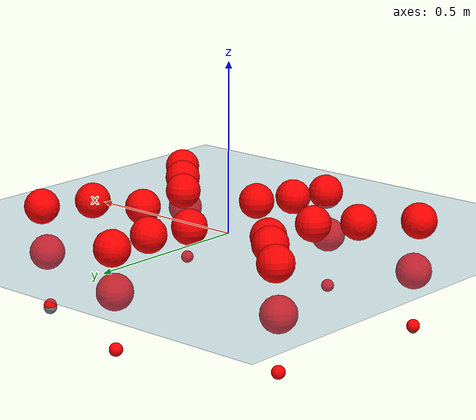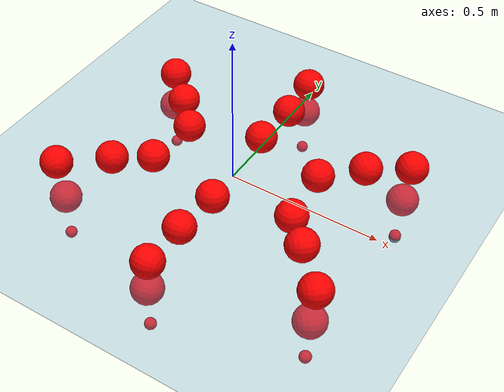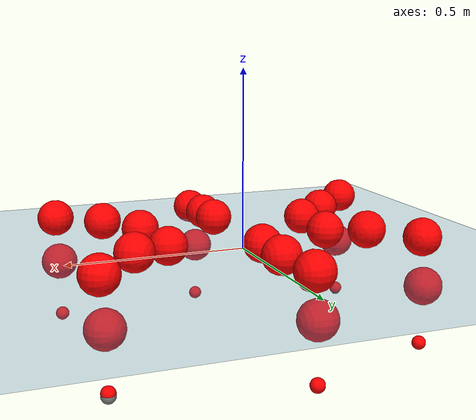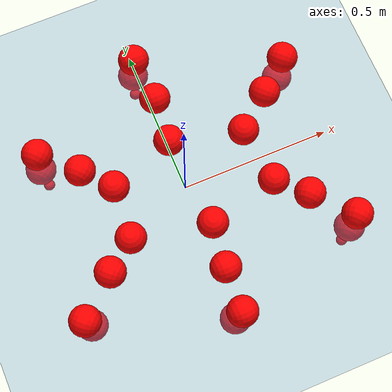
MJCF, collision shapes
<mujoco model="Golem">
  <compiler angle="radian" assetdir="assets" balanceinertia="true" inertiafromgeom="false"/>

  <option timestep="0.005" density="1.2" viscosity="2e-05"/>

  <size nkey="1"/>

  <visual>
    <quality shadowsize="8192"/>
    <map shadowclip="0.5"/>
  </visual>

  <default>
    <default class="/">
      <joint armature="0.01" damping="0.01" frictionloss="0.01"/>
      <geom contype="0" conaffinity="0" group="1" solref="-1000 -80"/>
      <site size="0.01 0.005 0.005" group="5"/>
      <general forcelimited="true" biastype="affine" gainprm="25" biasprm="0 -25 -0.5"/>
      <default class="visual">
        <geom type="mesh" group="2"/>
      </default>
      <default class="collision">
        <geom group="3"/>
      </default>
      <default class="foot">
        <geom size="0.01 0 0" condim="6" group="4" priority="1" solimp="0.015 1 0.01"/>
      </default>
      <default class="reward_collision_sphere">
        <geom group="5" rgba="1 0 0 1"/>
      </default>
    </default>
  </default>

  <asset>
    <texture type="skybox" colorspace="auto" name="//unnamed_texture_0" builtin="gradient" rgb1="0.95 0.95 0.95" rgb2="0.95 0.95 0.95" width="100" height="600"/>
    <texture type="2d" colorspace="auto" name="texplane" builtin="checker" rgb1="0.345 0.575 0.748" rgb2="0.345 0.575 0.748" markrgb="1 1 1" width="512" height="512"/>
    <material name="MatPlane" class="/" texture="texplane" texuniform="true" texrepeat="2 2" specular="0.9"/>
    <mesh name="body" class="/" file="body.stl" scale="0.001 0.001 0.001"/>
    <mesh name="coxa" class="/" file="coxa.stl" scale="0.001 0.001 0.001"/>
    <mesh name="femur" class="/" file="femur.stl" scale="0.001 0.001 0.001"/>
    <mesh name="tibia" class="/" file="tibia.stl" scale="0.001 0.001 0.001"/>
    <mesh name="tarsus" class="/" file="tarsus.stl" scale="0.001 0.001 0.001"/>
  </asset>

  <worldbody>
    <geom name="floor" class="/" size="100 100 0.125" type="plane" group="0" material="MatPlane"/>
    <light name="toplight_shadow" class="/" pos="0 0 5" dir="0.0990148 0.0990148 -0.990148" type="directional" ambient="0.04 0.04 0.04" diffuse="0.55 0.55 0.55" specular="0.12 0.12 0.12"/>
    <light name="toplight_fill" class="/" pos="0 0 5" dir="0.0990148 0.0990148 -0.990148" type="directional" castshadow="false" ambient="0.04 0.04 0.04" diffuse="0.3 0.3 0.3" specular="0.08 0.08 0.08"/>
    <body name="trunk" pos="0.0131871 -0.00128241 -0.00307101" quat="0.999966 -0.0081169 0.000230537 0.0017245">
      <inertial pos="0.00590051 -0.0177731 -0.0164404" quat="0.998496 -0.0198107 0.0144391 -0.0490331" mass="8.51497" diaginertia="0.0893443 0.050336 0.00825781"/>
      <joint name="//unnamed_joint_0" type="free"/>
      <geom name="//unnamed_geom_1" class="/" pos="0 0 0.0604861" quat="1 0 0 0" type="mesh" rgba="0.9 0.9 0.9 1" mesh="body"/>
      <site name="imu" class="/" pos="0.206802 -0.0732602 0.146136" size="0.0129255"/>
      <camera name="track" class="/" pos="0 -2.82552 0" quat="0.707107 0.707107 0 0" mode="trackcom"/>
      <camera name="ego_camera" class="/" pos="0.197574 0 0.0945095" quat="-0.5 -0.5 0.5 0.5"/>
      <body name="coxa_RR" pos="-0.273802 -0.132158 0.0535752" quat="0.384406 -0.00605395 0.00418597 -0.923135">
        <inertial pos="-0.0120411 -0.00945736 -0.00987598" quat="0.995952 0.0726159 0.02064 0.0487907" mass="0.271621" diaginertia="0.0652676 0.0403939 0.00662577"/>
        <joint name="coxa_joint_RR" class="/" pos="0 0 0" axis="-0.00359541 0.00564936 -0.999978" range="-3.15044 3.49636" armature="0.00160226" damping="0" frictionloss="0.0133694"/>
        <geom name="//unnamed_geom_2" class="/" type="mesh" rgba="0.2 0.2 0.2 1" mesh="coxa"/>
        <geom name="//unnamed_geom_3" class="reward_collision_sphere" size="0.0517021" pos="-0.045594 0 0"/>
        <body name="femur_RR" pos="0.0807406 -0.0155079 0.00365188" quat="0.495073 -0.501916 0.500538 0.502438">
          <inertial pos="-0.0160409 -0.00931482 0.00205985" quat="0.996965 -0.0661034 0.0405114 -0.00700616" mass="0.45033" diaginertia="0.0832498 0.0580484 0.00732525"/>
          <joint name="femur_joint_RR" class="/" pos="0 0 0" axis="0.00638249 -0.00321404 -0.999974" range="-3.36479 3.37491" armature="0.012422" damping="0.0850043" frictionloss="0.00693857"/>
          <geom name="//unnamed_geom_4" class="/" type="mesh" rgba="0.9 0.9 0.9 1" mesh="femur"/>
          <geom name="//unnamed_geom_5" class="reward_collision_sphere" size="0.0517021"/>
          <body name="tibia_RR" pos="-0.0015678 -0.16955 -0.0117669" quat="0.00371539 0.999986 0.00161441 0.00351619">
            <inertial pos="0.0134455 -0.00402815 -0.00335747" quat="0.998892 -0.0327157 0.0323243 -0.0100183" mass="0.327925" diaginertia="0.0703222 0.0576074 0.00611578"/>
            <joint name="tibia_joint_RR" class="/" pos="0 0 0" axis="0.0361394 0.0625703 0.997386" range="-2.96004 3.18115" armature="0.0134414" damping="0.0139641" frictionloss="0.0116054"/>
            <geom name="//unnamed_geom_6" class="/" type="mesh" rgba="0.2 0.2 0.2 1" mesh="tibia"/>
            <geom name="//unnamed_geom_7" class="reward_collision_sphere" size="0.0517021"/>
            <body name="tarsus_RR" pos="0.148094 -0.0126564 -0.00307037" quat="0.999983 5.4413e-05 -0.00569721 0.000913559">
              <inertial pos="0.0903475 0.00523642 0.0094178" quat="0.500957 0.500933 0.503495 0.494572" mass="0.343483" diaginertia="0.0692773 0.0468107 0.00579219"/>
              <joint name="tarsus_joint_RR" class="/" pos="0 0 0" axis="0.0204086 0.0199675 0.999592" range="-3.1436 3.1282" armature="0.0101281" damping="0.00710457" frictionloss="0.0220098"/>
              <geom name="//unnamed_geom_8" class="/" type="mesh" rgba="0.9 0.9 0.9 1" mesh="tarsus"/>
              <geom name="foot_1" class="foot" size="0.0151902" pos="0.170218 0 0" quat="0 -0.707107 0 0.707107"/>
              <geom name="//unnamed_geom_10" class="reward_collision_sphere" size="0.0517021"/>
              <geom name="//unnamed_geom_11" class="reward_collision_sphere" size="0.0193883" pos="0.163379 0 0"/>
              <site name="foot_1" class="foot" pos="0.170218 0 0" quat="0 -0.707107 0 0.707107" size="0.0129255"/>
            </body>
          </body>
        </body>
      </body>
      <body name="coxa_RM" pos="0.0160334 -0.201858 0.0588781" quat="0.705441 0.00230829 0.00249136 -0.70876">
        <inertial pos="0.0156405 -0.00298239 0.00627373" quat="0.999946 -0.00295117 -0.00739142 -0.00669254" mass="0.342753" diaginertia="0.0728712 0.0392269 0.00584666"/>
        <joint name="coxa_joint_RM" class="/" pos="0 0 0" axis="-0.00158963 -0.00215993 -0.999996" range="-3.4178 3.15577" armature="0.00386585" damping="0.00361079" frictionloss="0.0141633"/>
        <geom name="//unnamed_geom_12" class="/" type="mesh" rgba="0.2 0.2 0.2 1" mesh="coxa"/>
        <geom name="//unnamed_geom_13" class="reward_collision_sphere" size="0.0517021" pos="-0.045594 0 0"/>
        <body name="femur_RM" pos="0.0996068 -0.0172383 -0.0152859" quat="0.497355 -0.502959 0.497129 0.502528">
          <inertial pos="-0.00434249 0.0109625 -0.00877767" quat="0.996286 0.0391358 -0.0744841 0.0183067" mass="0.463624" diaginertia="0.111609 0.0665122 0.009988"/>
          <joint name="femur_joint_RM" class="/" pos="0 0 0" axis="0.00244603 0.00443612 -0.999987" range="-2.78874 3.2834" armature="0.011253" damping="0" frictionloss="0.0132265"/>
          <geom name="//unnamed_geom_14" class="/" type="mesh" rgba="0.9 0.9 0.9 1" mesh="femur"/>
          <geom name="//unnamed_geom_15" class="reward_collision_sphere" size="0.0517021"/>
          <body name="tibia_RM" pos="0.015196 -0.146924 -0.00756335" quat="0.00659975 0.999961 -0.00289108 -0.00518536">
            <inertial pos="0.0128394 -0.000262345 0.00701907" quat="0.997682 0.00819138 0.0193066 -0.0647421" mass="0.425613" diaginertia="0.0879225 0.0707332 0.00967756"/>
            <joint name="tibia_joint_RM" class="/" pos="0 0 0" axis="-0.00733998 -0.0367781 0.999296" stiffness="0.0794652" range="-3.13164 3.13262" armature="0.0161047" damping="0.0670023" frictionloss="0.017471"/>
            <geom name="//unnamed_geom_16" class="/" type="mesh" rgba="0.2 0.2 0.2 1" mesh="tibia"/>
            <geom name="//unnamed_geom_17" class="reward_collision_sphere" size="0.0517021"/>
            <body name="tarsus_RM" pos="0.130582 -0.00804509 0.0137" quat="0.999969 -0.000690542 0.0077826 0.000687773">
              <inertial pos="0.0911397 -0.00536084 0.000469442" quat="0.522609 0.499866 0.466408 0.509389" mass="0.434716" diaginertia="0.07863 0.0567124 0.00572764"/>
              <joint name="tarsus_joint_RM" class="/" pos="0 0 0" axis="0.0516067 -0.0536751 0.997224" range="-2.88413 2.78498" armature="0.0206547" damping="0.00744998" frictionloss="0.0243576"/>
              <geom name="//unnamed_geom_18" class="/" type="mesh" rgba="0.9 0.9 0.9 1" mesh="tarsus"/>
              <geom name="foot_2" class="foot" size="0.00926487" pos="0.170218 0 0" quat="0 -0.707107 0 0.707107"/>
              <geom name="//unnamed_geom_20" class="reward_collision_sphere" size="0.0517021"/>
              <geom name="//unnamed_geom_21" class="reward_collision_sphere" size="0.0193883" pos="0.163379 0 0"/>
              <site name="foot_2" class="foot" pos="0.170218 0 0" quat="0 -0.707107 0 0.707107" size="0.0129255"/>
            </body>
          </body>
        </body>
      </body>
      <body name="coxa_RF" pos="0.286216 -0.131714 0.0594817" quat="0.921417 0.00447506 0.000235122 -0.388551">
        <inertial pos="-0.0159838 -0.0162822 -0.000709123" quat="0.999923 -0.00411983 0.01111 -0.0035893" mass="0.399783" diaginertia="0.0869892 0.0641364 0.00729552"/>
        <joint name="coxa_joint_RF" class="/" pos="0 0 0" axis="-0.00751575 -0.0468806 -0.998872" stiffness="0.0877478" range="-3.3401 3.46603" armature="0.0190102" damping="0" frictionloss="0.00991207"/>
        <geom name="//unnamed_geom_22" class="/" type="mesh" rgba="0.2 0.2 0.2 1" mesh="coxa"/>
        <geom name="//unnamed_geom_23" class="reward_collision_sphere" size="0.0517021" pos="-0.045594 0 0"/>
        <body name="femur_RF" pos="0.0789213 -0.00184211 0.00765316" quat="0.4935 -0.50094 0.502833 0.502669">
          <inertial pos="0.000708758 0.011328 -0.017197" quat="0.99724 -0.0402748 -0.0204451 0.0589326" mass="0.444707" diaginertia="0.0985153 0.0687938 0.0110065"/>
          <joint name="femur_joint_RF" class="/" pos="0 0 0" axis="0.0851754 0.01982 -0.996169" range="-3.05699 3.36221" armature="0.000636259" damping="0" frictionloss="0.00411951"/>
          <geom name="//unnamed_geom_24" class="/" type="mesh" rgba="0.9 0.9 0.9 1" mesh="femur"/>
          <geom name="//unnamed_geom_25" class="reward_collision_sphere" size="0.0517021"/>
          <body name="tibia_RF" pos="0.00653718 -0.162961 -0.00471432" quat="-0.00257688 0.999986 -0.00302404 -0.00357813">
            <inertial pos="0.000311301 0.000877394 0.00193797" quat="0.997573 0.0510573 0.0294001 0.0371178" mass="0.544665" diaginertia="0.0888573 0.0644656 0.00686346"/>
            <joint name="tibia_joint_RF" class="/" pos="0 0 0" axis="0.0262467 -0.0146627 0.999548" stiffness="0.0573646" range="-3.14931 2.81292" armature="0.00961619" damping="0.0122304" frictionloss="0.00752443"/>
            <geom name="//unnamed_geom_26" class="/" type="mesh" rgba="0.2 0.2 0.2 1" mesh="tibia"/>
            <geom name="//unnamed_geom_27" class="reward_collision_sphere" size="0.0517021"/>
            <body name="tarsus_RF" pos="0.132342 -0.00255975 0.00529099" quat="0.999962 0.00141108 -0.0081935 0.00252516">
              <inertial pos="0.0988726 -0.000457317 0.000556712" quat="0.513853 0.524951 0.447282 0.510215" mass="0.494687" diaginertia="0.0915976 0.0671972 0.0103147"/>
              <joint name="tarsus_joint_RF" class="/" pos="0 0 0" axis="-0.0307762 -0.023876 0.999241" range="-3.14689 3.20408" armature="0.0138048" damping="0" frictionloss="0.0053399"/>
              <geom name="//unnamed_geom_28" class="/" type="mesh" rgba="0.9 0.9 0.9 1" mesh="tarsus"/>
              <geom name="foot_3" class="foot" size="0.00552585" pos="0.170218 0 0" quat="0 -0.707107 0 0.707107"/>
              <geom name="//unnamed_geom_30" class="reward_collision_sphere" size="0.0517021"/>
              <geom name="//unnamed_geom_31" class="reward_collision_sphere" size="0.0193883" pos="0.163379 0 0"/>
              <site name="foot_3" class="foot" pos="0.170218 0 0" quat="0 -0.707107 0 0.707107" size="0.0129255"/>
            </body>
          </body>
        </body>
      </body>
      <body name="coxa_LR" pos="-0.260683 0.111958 0.0561372" quat="0.38761 -0.00542398 -0.000496566 0.921808">
        <inertial pos="-0.000606609 0.00262199 -0.00807971" quat="0.999941 -0.00723064 0.00537127 0.0060797" mass="0.471586" diaginertia="0.0934455 0.0512908 0.00892822"/>
        <joint name="coxa_joint_LR" class="/" pos="0 0 0" axis="0.0516239 -0.055198 -0.99714" stiffness="0.0462128" range="-3.4293 3.15075" armature="0.0189226" damping="0" frictionloss="0.0117583"/>
        <geom name="//unnamed_geom_32" class="/" type="mesh" rgba="0.2 0.2 0.2 1" mesh="coxa"/>
        <geom name="//unnamed_geom_33" class="reward_collision_sphere" size="0.0517021" pos="-0.045594 0 0"/>
        <body name="femur_LR" pos="0.0742523 -0.00333663 0.0158771" quat="0.496203 -0.50189 0.501281 0.500607">
          <inertial pos="0.00022215 0.00490365 -0.010359" quat="0.998926 -0.031214 0.0322854 0.0114276" mass="0.386866" diaginertia="0.0706854 0.0641874 0.00645811"/>
          <joint name="femur_joint_LR" class="/" pos="0 0 0" axis="0.0198864 -0.0190758 0.99962" stiffness="0.0630688" range="-2.8258 2.82973" armature="0.0126892" damping="0.0880478" frictionloss="0.0179007"/>
          <geom name="//unnamed_geom_34" class="/" type="mesh" rgba="0.9 0.9 0.9 1" mesh="femur"/>
          <geom name="//unnamed_geom_35" class="reward_collision_sphere" size="0.0517021"/>
          <body name="tibia_LR" pos="0.00208652 -0.152185 0.0022769" quat="0.00242989 0.999993 0.00217581 0.00177202">
            <inertial pos="0.017616 0.00786233 0.016215" quat="0.999675 0.00246053 0.0251457 0.0035342" mass="0.429344" diaginertia="0.0842704 0.0485794 0.0092536"/>
            <joint name="tibia_joint_LR" class="/" pos="0 0 0" axis="0.000673829 0.00243716 -0.999997" stiffness="0.0584354" range="-3.46312 2.86244" armature="0.0201781" damping="0" frictionloss="0.018514"/>
            <geom name="//unnamed_geom_36" class="/" type="mesh" rgba="0.2 0.2 0.2 1" mesh="tibia"/>
            <geom name="//unnamed_geom_37" class="reward_collision_sphere" size="0.0517021"/>
            <body name="tarsus_LR" pos="0.137997 0.0101823 -0.00762249" quat="1 -0.000181946 3.65248e-05 0.000675709">
              <inertial pos="0.085439 -0.000310279 -0.00754783" quat="0.506909 0.48806 0.498571 0.506229" mass="0.391307" diaginertia="0.0744084 0.0382936 0.00602391"/>
              <joint name="tarsus_joint_LR" class="/" pos="0 0 0" axis="0.0799055 0.0187984 -0.996625" range="-3.03423 3.41438" armature="0.0170499" damping="0.0440828" frictionloss="0.00407938"/>
              <geom name="//unnamed_geom_38" class="/" type="mesh" rgba="0.9 0.9 0.9 1" mesh="tarsus"/>
              <geom name="foot_4" class="foot" size="0.00912061" pos="0.170218 0 0" quat="0.707107 0 -0.707107 0"/>
              <geom name="//unnamed_geom_40" class="reward_collision_sphere" size="0.0517021"/>
              <geom name="//unnamed_geom_41" class="reward_collision_sphere" size="0.0193883" pos="0.163379 0 0"/>
              <site name="foot_4" class="foot" pos="0.170218 0 0" quat="0.707107 0 -0.707107 0" size="0.0129255"/>
            </body>
          </body>
        </body>
      </body>
      <body name="coxa_LM" pos="-0.00533932 0.201869 0.0586345" quat="0.706748 0.00478339 -0.000973536 0.707448">
        <inertial pos="-0.0161342 -0.0173349 -0.00813254" quat="0.999999 0.000117754 -7.7e-05 -0.00133271" mass="0.431912" diaginertia="0.0735556 0.0566862 0.00758403"/>
        <joint name="coxa_joint_LM" class="/" pos="0 0 0" axis="0.0288915 -0.0142024 -0.999482" stiffness="0.0682585" range="-3.37506 3.37583" armature="0.00277364" damping="0.0175882" frictionloss="0.00548147"/>
        <geom name="//unnamed_geom_42" class="/" type="mesh" rgba="0.2 0.2 0.2 1" mesh="coxa"/>
        <geom name="//unnamed_geom_43" class="reward_collision_sphere" size="0.0517021" pos="-0.045594 0 0"/>
        <body name="femur_LM" pos="0.105959 -0.0124461 0.00933169" quat="0.505267 -0.502539 0.494187 0.497935">
          <inertial pos="0.0124531 -0.0114546 0.00559069" quat="0.997612 -0.0680525 -0.00769083 -0.00898007" mass="0.392033" diaginertia="0.0611473 0.0593085 0.00627796"/>
          <joint name="femur_joint_LM" class="/" pos="0 0 0" axis="-0.00551818 -0.0383406 0.999249" range="-3.32246 3.13343" armature="0.0238468" damping="0.0182771" frictionloss="0.0106024"/>
          <geom name="//unnamed_geom_44" class="/" type="mesh" rgba="0.9 0.9 0.9 1" mesh="femur"/>
          <geom name="//unnamed_geom_45" class="reward_collision_sphere" size="0.0517021"/>
          <body name="tibia_LM" pos="0.000884242 -0.155589 0.0132447" quat="-0.00143346 0.999999 -0.000762706 -0.000431431">
            <inertial pos="-0.00802856 -0.0153789 -0.0103033" quat="0.999119 0.0262733 0.0256797 -0.0202868" mass="0.449284" diaginertia="0.0942443 0.0526812 0.00681878"/>
            <joint name="tibia_joint_LM" class="/" pos="0 0 0" axis="-0.0397574 0.0438325 -0.998247" stiffness="0.03692" range="-2.9689 2.87409" armature="0.0123277" damping="0.0390298" frictionloss="0.0205363"/>
            <geom name="//unnamed_geom_46" class="/" type="mesh" rgba="0.2 0.2 0.2 1" mesh="tibia"/>
            <geom name="//unnamed_geom_47" class="reward_collision_sphere" size="0.0517021"/>
            <body name="tarsus_LM" pos="0.120569 0.000128292 -0.00802061" quat="1 -0.000326136 0.000113368 0.000265039">
              <inertial pos="0.0968019 -0.00022229 8.08416e-05" quat="0.508155 0.501554 0.531281 0.45603" mass="0.272669" diaginertia="0.0571001 0.0429565 0.00723613"/>
              <joint name="tarsus_joint_LM" class="/" pos="0 0 0" axis="0.0483711 0.000788512 -0.998829" range="-3.12891 3.39335" armature="0.0136765" damping="0" frictionloss="0.013298"/>
              <geom name="//unnamed_geom_48" class="/" type="mesh" rgba="0.9 0.9 0.9 1" mesh="tarsus"/>
              <geom name="foot_5" class="foot" size="0.00892727" pos="0.170218 0 0" quat="0.707107 0 -0.707107 0"/>
              <geom name="//unnamed_geom_50" class="reward_collision_sphere" size="0.0517021"/>
              <geom name="//unnamed_geom_51" class="reward_collision_sphere" size="0.0193883" pos="0.163379 0 0"/>
              <site name="foot_5" class="foot" pos="0.170218 0 0" quat="0.707107 0 -0.707107 0" size="0.0129255"/>
            </body>
          </body>
        </body>
      </body>
      <body name="coxa_LF" pos="0.265863 0.127247 0.0583756" quat="0.92387 0.000513815 -0.000173246 0.382706">
        <inertial pos="6.63287e-05 -0.00703134 0.000856857" quat="0.999995 -0.00267076 0.00141277 -0.000214395" mass="0.547942" diaginertia="0.100994 0.0604184 0.00803837"/>
        <joint name="coxa_joint_LF" class="/" pos="0 0 0" axis="-0.0738901 -0.0364005 -0.996602" range="-3.21622 3.33799" armature="0.00711028" damping="0.0211012" frictionloss="0.0127121"/>
        <geom name="//unnamed_geom_52" class="/" type="mesh" rgba="0.2 0.2 0.2 1" mesh="coxa"/>
        <geom name="//unnamed_geom_53" class="reward_collision_sphere" size="0.0517021" pos="-0.045594 0 0"/>
        <body name="femur_LF" pos="0.098939 -0.0174614 0.0179754" quat="0.499842 -0.499846 0.497778 0.502522">
          <inertial pos="0.0149 -0.00994326 0.00731342" quat="0.999922 0.00430829 0.00396222 0.01101" mass="0.409782" diaginertia="0.0995743 0.075368 0.00825331"/>
          <joint name="femur_joint_LF" class="/" pos="0 0 0" axis="-0.0342028 0.0645475 0.997328" range="-3.13821 3.45466" armature="0.0221289" damping="0.00966506" frictionloss="0.00880664"/>
          <geom name="//unnamed_geom_54" class="/" type="mesh" rgba="0.9 0.9 0.9 1" mesh="femur"/>
          <geom name="//unnamed_geom_55" class="reward_collision_sphere" size="0.0517021"/>
          <body name="tibia_LF" pos="0.0162123 -0.147368 -0.0101286" quat="0.0029362 0.999993 0.00152257 0.00164524">
            <inertial pos="-0.00795807 -0.0102668 -0.00505218" quat="0.996841 -0.0159386 0.0656369 -0.0417848" mass="0.440391" diaginertia="0.0808329 0.0487234 0.00684944"/>
            <joint name="tibia_joint_LF" class="/" pos="0 0 0" axis="0.00187101 0.000554735 -0.999998" stiffness="0.0143977" range="-3.17991 3.35822" armature="0.024638" damping="0.0068134" frictionloss="0.0129713"/>
            <geom name="//unnamed_geom_56" class="/" type="mesh" rgba="0.2 0.2 0.2 1" mesh="tibia"/>
            <geom name="//unnamed_geom_57" class="reward_collision_sphere" size="0.0517021"/>
            <body name="tarsus_LF" pos="0.137624 -0.0103993 -0.00366906" quat="0.999961 -0.00537452 0.00333736 -0.00618303">
              <inertial pos="0.0773904 0.0154173 -0.00340238" quat="0.50558 0.493706 0.509188 0.491295" mass="0.485635" diaginertia="0.10401 0.0658009 0.00946575"/>
              <joint name="tarsus_joint_LF" class="/" pos="0 0 0" axis="-0.00612771 -0.07642 -0.997057" range="-3.43952 3.05103" armature="0.00953961" damping="0" frictionloss="0.0143694"/>
              <geom name="//unnamed_geom_58" class="/" type="mesh" rgba="0.9 0.9 0.9 1" mesh="tarsus"/>
              <geom name="foot_6" class="foot" size="0.0196654" pos="0.170218 0 0" quat="0.707107 0 -0.707107 0"/>
              <geom name="//unnamed_geom_60" class="reward_collision_sphere" size="0.0517021"/>
              <geom name="//unnamed_geom_61" class="reward_collision_sphere" size="0.0193883" pos="0.163379 0 0"/>
              <site name="foot_6" class="foot" pos="0.170218 0 0" quat="0.707107 0 -0.707107 0" size="0.0129255"/>
            </body>
          </body>
        </body>
      </body>
    </body>
  </worldbody>

  <contact>
    <pair class="/" geom1="floor" geom2="foot_1" name="//unnamed_contact_0"/>
    <pair class="/" geom1="floor" geom2="foot_2" name="//unnamed_contact_1"/>
    <pair class="/" geom1="floor" geom2="foot_3" name="//unnamed_contact_2"/>
    <pair class="/" geom1="floor" geom2="foot_4" name="//unnamed_contact_3"/>
    <pair class="/" geom1="floor" geom2="foot_5" name="//unnamed_contact_4"/>
    <pair class="/" geom1="floor" geom2="foot_6" name="//unnamed_contact_5"/>
  </contact>

  <actuator>
    <general name="coxa_joint_RR" class="/" joint="coxa_joint_RR" forcerange="-8.00282 8.00282" gainprm="22.4632" biasprm="0 -22.4632 -0.814257"/>
    <general name="femur_joint_RR" class="/" joint="femur_joint_RR" forcerange="-9.20069 9.20069" gainprm="22.4632" biasprm="0 -22.4632 -0.814257"/>
    <general name="tibia_joint_RR" class="/" joint="tibia_joint_RR" forcerange="-8.44393 8.44393" gainprm="22.4632" biasprm="0 -22.4632 -0.814257"/>
    <general name="tarsus_joint_RR" class="/" joint="tarsus_joint_RR" forcerange="-12.0012 12.0012" gainprm="22.4632" biasprm="0 -22.4632 -0.814257"/>
    <general name="coxa_joint_RM" class="/" joint="coxa_joint_RM" forcerange="-12.1706 12.1706" gainprm="22.4632" biasprm="0 -22.4632 -0.814257"/>
    <general name="femur_joint_RM" class="/" joint="femur_joint_RM" forcerange="-14.3429 14.3429" gainprm="22.4632" biasprm="0 -22.4632 -0.814257"/>
    <general name="tibia_joint_RM" class="/" joint="tibia_joint_RM" forcerange="-9.6415 9.6415" gainprm="22.4632" biasprm="0 -22.4632 -0.814257"/>
    <general name="tarsus_joint_RM" class="/" joint="tarsus_joint_RM" forcerange="-6.44005 6.44005" gainprm="22.4632" biasprm="0 -22.4632 -0.814257"/>
    <general name="coxa_joint_RF" class="/" joint="coxa_joint_RF" forcerange="-14.5479 14.5479" gainprm="22.4632" biasprm="0 -22.4632 -0.814257"/>
    <general name="femur_joint_RF" class="/" joint="femur_joint_RF" forcerange="-14.168 14.168" gainprm="22.4632" biasprm="0 -22.4632 -0.814257"/>
    <general name="tibia_joint_RF" class="/" joint="tibia_joint_RF" forcerange="-4.86032 4.86032" gainprm="22.4632" biasprm="0 -22.4632 -0.814257"/>
    <general name="tarsus_joint_RF" class="/" joint="tarsus_joint_RF" forcerange="-6.05765 6.05765" gainprm="22.4632" biasprm="0 -22.4632 -0.814257"/>
    <general name="coxa_joint_LR" class="/" joint="coxa_joint_LR" forcerange="-10.9964 10.9964" gainprm="22.4632" biasprm="0 -22.4632 -0.814257"/>
    <general name="femur_joint_LR" class="/" joint="femur_joint_LR" forcerange="-13.2692 13.2692" gainprm="22.4632" biasprm="0 -22.4632 -0.814257"/>
    <general name="tibia_joint_LR" class="/" joint="tibia_joint_LR" forcerange="-15.2417 15.2417" gainprm="22.4632" biasprm="0 -22.4632 -0.814257"/>
    <general name="tarsus_joint_LR" class="/" joint="tarsus_joint_LR" forcerange="-3.3651 3.3651" gainprm="22.4632" biasprm="0 -22.4632 -0.814257"/>
    <general name="coxa_joint_LM" class="/" joint="coxa_joint_LM" forcerange="-5.74312 5.74312" gainprm="22.4632" biasprm="0 -22.4632 -0.814257"/>
    <general name="femur_joint_LM" class="/" joint="femur_joint_LM" forcerange="-9.04364 9.04364" gainprm="22.4632" biasprm="0 -22.4632 -0.814257"/>
    <general name="tibia_joint_LM" class="/" joint="tibia_joint_LM" forcerange="-9.47113 9.47113" gainprm="22.4632" biasprm="0 -22.4632 -0.814257"/>
    <general name="tarsus_joint_LM" class="/" joint="tarsus_joint_LM" forcerange="-12.6699 12.6699" gainprm="22.4632" biasprm="0 -22.4632 -0.814257"/>
    <general name="coxa_joint_LF" class="/" joint="coxa_joint_LF" forcerange="-9.54931 9.54931" gainprm="22.4632" biasprm="0 -22.4632 -0.814257"/>
    <general name="femur_joint_LF" class="/" joint="femur_joint_LF" forcerange="-9.20636 9.20636" gainprm="22.4632" biasprm="0 -22.4632 -0.814257"/>
    <general name="tibia_joint_LF" class="/" joint="tibia_joint_LF" forcerange="-6.4516 6.4516" gainprm="22.4632" biasprm="0 -22.4632 -0.814257"/>
    <general name="tarsus_joint_LF" class="/" joint="tarsus_joint_LF" forcerange="-10.856 10.856" gainprm="22.4632" biasprm="0 -22.4632 -0.814257"/>
  </actuator>

  <sensor>
    <gyro site="imu" name="imu_angular_velocity"/>
    <velocimeter site="imu" name="imu_linear_velocity"/>
    <framelinvel objtype="site" objname="foot_1" name="foot_1_global_linear_velocity"/>
    <framelinvel objtype="site" objname="foot_2" name="foot_2_global_linear_velocity"/>
    <framelinvel objtype="site" objname="foot_3" name="foot_3_global_linear_velocity"/>
    <framelinvel objtype="site" objname="foot_4" name="foot_4_global_linear_velocity"/>
    <framelinvel objtype="site" objname="foot_5" name="foot_5_global_linear_velocity"/>
    <framelinvel objtype="site" objname="foot_6" name="foot_6_global_linear_velocity"/>
  </sensor>

  <keyframe>
    <key name="home" qpos="0 0 0.1457 1 0 0 0 0 0 0 0 0 0 0 0 0 0 0 0 0 0 0 0 0 0 0 0 0 0 0 0"/>
  </keyframe>
</mujoco>
